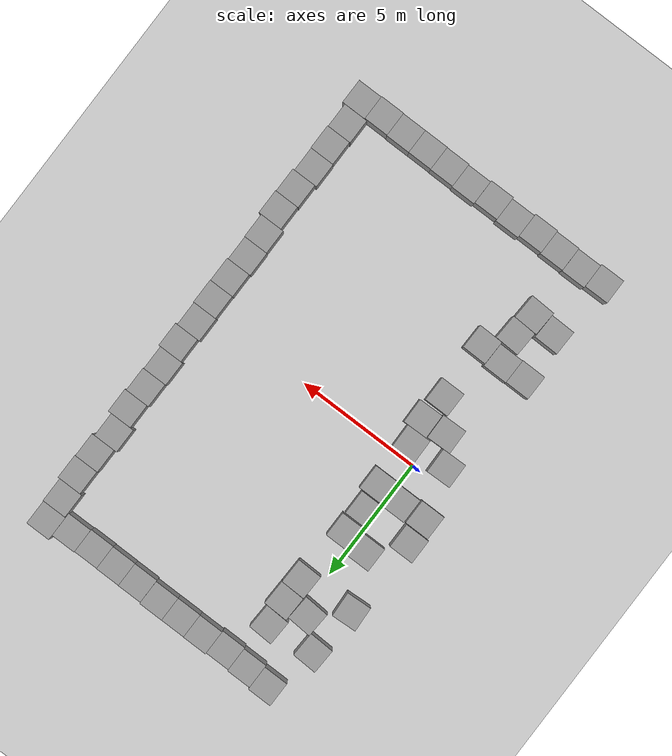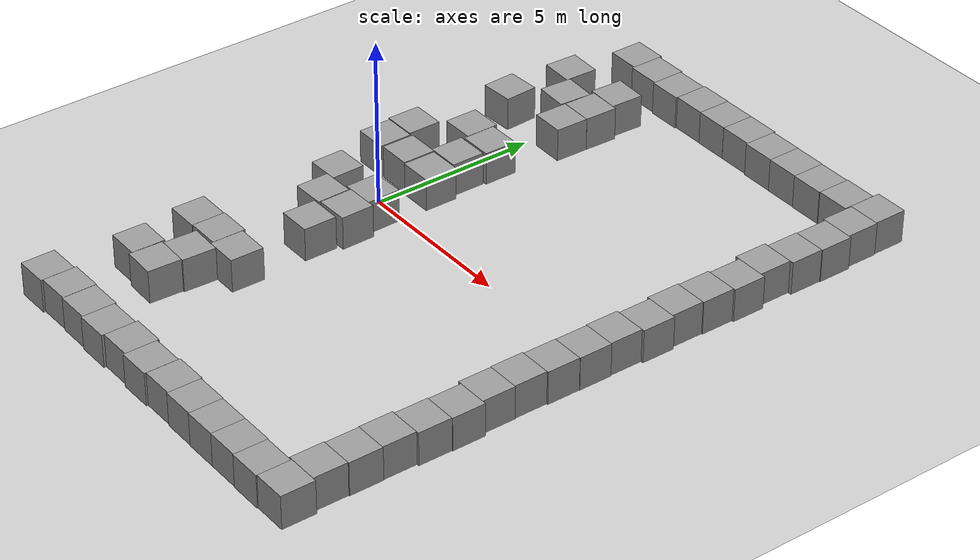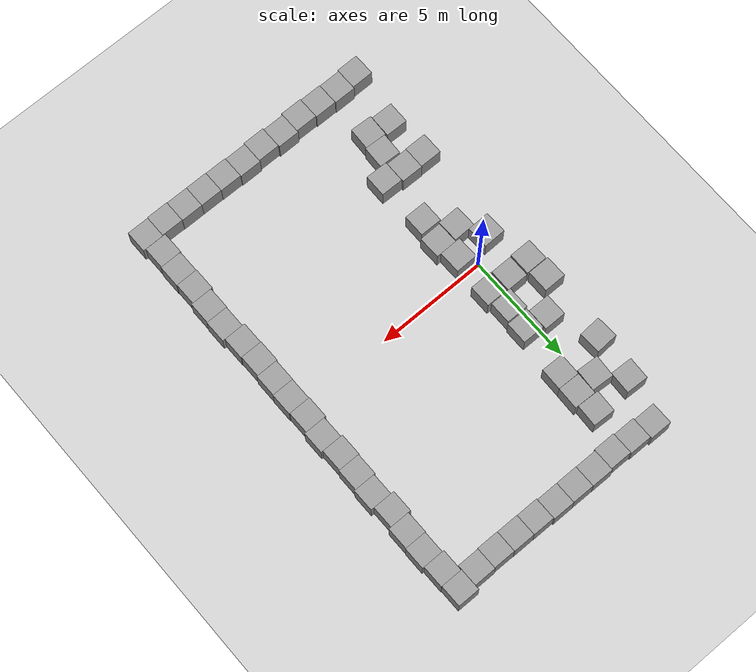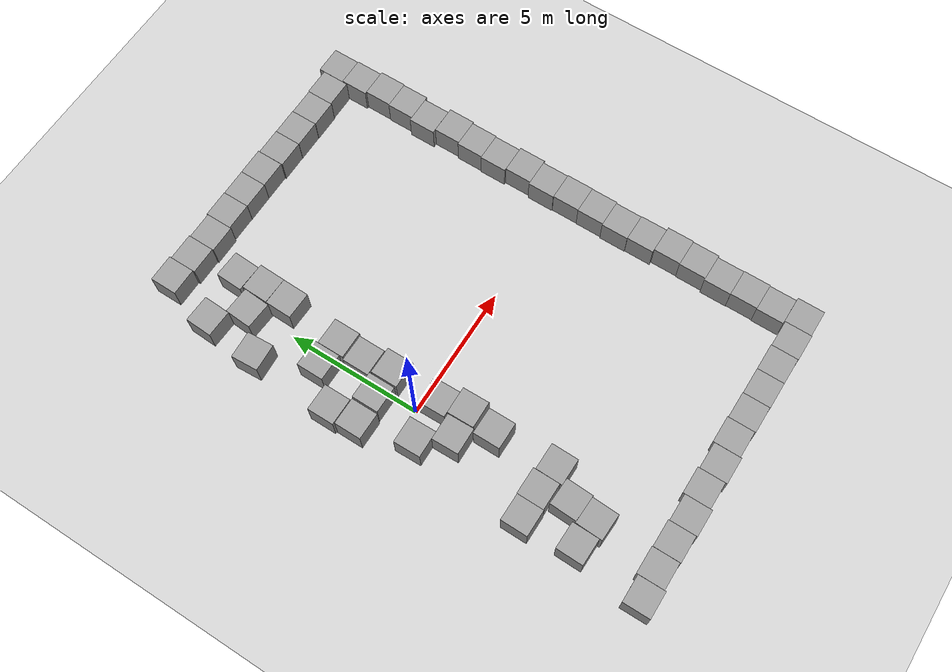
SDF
<sdf version="1.7">
 <world name="default">
  <model name="ground_plane">
   <static>1</static>
   <link name="link">
    <collision name="collision">
     <geometry><plane><normal>0 0 1</normal><size>100 100</size></plane></geometry>
     <surface>
      <contact><collide_bitmask>65535</collide_bitmask></contact>
      <friction><ode><mu>100</mu><mu2>50</mu2></ode></friction>
     </surface>
    </collision>
    <visual name="visual">
     <cast_shadows>0</cast_shadows>
     <geometry><plane><normal>0 0 1</normal><size>100 100</size></plane></geometry>
     <material>
      <script><uri>file://media/materials/scripts/gazebo.material</uri><name>Gazebo/Grey</name></script>
     </material>
    </visual>
   </link>
  </model>
  <model name="unit_box_16">
   <pose>-0.609072 9.50819 0.499995 -0 1e-05 -0.001209</pose>
   <link name="link">
    <inertial>
     <mass>1</mass>
     <inertia>
      <ixx>0.166667</ixx>
      <ixy>0</ixy>
      <ixz>0</ixz>
      <iyy>0.166667</iyy>
      <iyz>0</iyz>
      <izz>0.166667</izz>
     </inertia>
    </inertial>
    <collision name="collision"><geometry><box><size>1 1 1</size></box></geometry></collision>
    <visual name="visual">
     <geometry><box><size>1 1 1</size></box></geometry>
     <material>
      <script><name>Gazebo/Grey</name><uri>file://media/materials/scripts/gazebo.material</uri></script>
     </material>
    </visual>
   </link>
  </model>
  <model name="unit_box_17">
   <pose>0.390916 9.43627 0.499995 1e-05 0 -0.001064</pose>
   <link name="link">
    <inertial>
     <mass>1</mass>
     <inertia>
      <ixx>0.166667</ixx>
      <ixy>0</ixy>
      <ixz>0</ixz>
      <iyy>0.166667</iyy>
      <iyz>0</iyz>
      <izz>0.166667</izz>
     </inertia>
    </inertial>
    <collision name="collision"><geometry><box><size>1 1 1</size></box></geometry></collision>
    <visual name="visual">
     <geometry><box><size>1 1 1</size></box></geometry>
     <material>
      <script><name>Gazebo/Grey</name><uri>file://media/materials/scripts/gazebo.material</uri></script>
     </material>
    </visual>
   </link>
  </model>
  <model name="unit_box_18">
   <pose>1.39091 9.39225 0.499995 0 -1e-05 -0.001016</pose>
   <link name="link">
    <inertial>
     <mass>1</mass>
     <inertia>
      <ixx>0.166667</ixx>
      <ixy>0</ixy>
      <ixz>0</ixz>
      <iyy>0.166667</iyy>
      <iyz>0</iyz>
      <izz>0.166667</izz>
     </inertia>
    </inertial>
    <collision name="collision"><geometry><box><size>1 1 1</size></box></geometry></collision>
    <visual name="visual">
     <geometry><box><size>1 1 1</size></box></geometry>
     <material>
      <script><name>Gazebo/Grey</name><uri>file://media/materials/scripts/gazebo.material</uri></script>
     </material>
    </visual>
   </link>
  </model>
  <model name="unit_box_19">
   <pose>2.39096 9.4387 0.499995 0 -1e-05 -0.001018</pose>
   <link name="link">
    <inertial>
     <mass>1</mass>
     <inertia>
      <ixx>0.166667</ixx>
      <ixy>0</ixy>
      <ixz>0</ixz>
      <iyy>0.166667</iyy>
      <iyz>0</iyz>
      <izz>0.166667</izz>
     </inertia>
    </inertial>
    <collision name="collision"><geometry><box><size>1 1 1</size></box></geometry></collision>
    <visual name="visual">
     <geometry><box><size>1 1 1</size></box></geometry>
     <material>
      <script><name>Gazebo/Grey</name><uri>file://media/materials/scripts/gazebo.material</uri></script>
     </material>
    </visual>
   </link>
  </model>
  <model name="unit_box_20">
   <pose>3.39095 9.42951 0.499995 0 -1e-05 -0.001017</pose>
   <link name="link">
    <inertial>
     <mass>1</mass>
     <inertia>
      <ixx>0.166667</ixx>
      <ixy>0</ixy>
      <ixz>0</ixz>
      <iyy>0.166667</iyy>
      <iyz>0</iyz>
      <izz>0.166667</izz>
     </inertia>
    </inertial>
    <collision name="collision"><geometry><box><size>1 1 1</size></box></geometry></collision>
    <visual name="visual">
     <geometry><box><size>1 1 1</size></box></geometry>
     <material>
      <script><name>Gazebo/Grey</name><uri>file://media/materials/scripts/gazebo.material</uri></script>
     </material>
    </visual>
   </link>
  </model>
  <model name="unit_box_21">
   <pose>4.39095 9.43121 0.499995 0 -1e-05 -0.001014</pose>
   <link name="link">
    <inertial>
     <mass>1</mass>
     <inertia>
      <ixx>0.166667</ixx>
      <ixy>0</ixy>
      <ixz>0</ixz>
      <iyy>0.166667</iyy>
      <iyz>0</iyz>
      <izz>0.166667</izz>
     </inertia>
    </inertial>
    <collision name="collision"><geometry><box><size>1 1 1</size></box></geometry></collision>
    <visual name="visual">
     <geometry><box><size>1 1 1</size></box></geometry>
     <material>
      <script><name>Gazebo/Grey</name><uri>file://media/materials/scripts/gazebo.material</uri></script>
     </material>
    </visual>
   </link>
  </model>
  <model name="unit_box_22">
   <pose>5.39168 9.38598 0.5 -0 1e-06 0.000489</pose>
   <link name="link">
    <inertial>
     <mass>1</mass>
     <inertia>
      <ixx>0.166667</ixx>
      <ixy>0</ixy>
      <ixz>0</ixz>
      <iyy>0.166667</iyy>
      <iyz>0</iyz>
      <izz>0.166667</izz>
     </inertia>
    </inertial>
    <collision name="collision"><geometry><box><size>1 1 1</size></box></geometry></collision>
    <visual name="visual">
     <geometry><box><size>1 1 1</size></box></geometry>
     <material>
      <script><name>Gazebo/Grey</name><uri>file://media/materials/scripts/gazebo.material</uri></script>
     </material>
    </visual>
   </link>
  </model>
  <model name="unit_box_23">
   <pose>6.39168 9.37903 0.5 0 -1e-06 0.000489</pose>
   <link name="link">
    <inertial>
     <mass>1</mass>
     <inertia>
      <ixx>0.166667</ixx>
      <ixy>0</ixy>
      <ixz>0</ixz>
      <iyy>0.166667</iyy>
      <iyz>0</iyz>
      <izz>0.166667</izz>
     </inertia>
    </inertial>
    <collision name="collision"><geometry><box><size>1 1 1</size></box></geometry></collision>
    <visual name="visual">
     <geometry><box><size>1 1 1</size></box></geometry>
     <material>
      <script><name>Gazebo/Grey</name><uri>file://media/materials/scripts/gazebo.material</uri></script>
     </material>
    </visual>
   </link>
  </model>
  <model name="unit_box_24">
   <pose>7.39182 9.36826 0.499995 -1e-05 0 0.00073</pose>
   <link name="link">
    <inertial>
     <mass>1</mass>
     <inertia>
      <ixx>0.166667</ixx>
      <ixy>0</ixy>
      <ixz>0</ixz>
      <iyy>0.166667</iyy>
      <iyz>0</iyz>
      <izz>0.166667</izz>
     </inertia>
    </inertial>
    <collision name="collision"><geometry><box><size>1 1 1</size></box></geometry></collision>
    <visual name="visual">
     <geometry><box><size>1 1 1</size></box></geometry>
     <material>
      <script><name>Gazebo/Grey</name><uri>file://media/materials/scripts/gazebo.material</uri></script>
     </material>
    </visual>
   </link>
  </model>
  <model name="unit_box_25">
   <pose>8.39215 9.39462 0.499995 1e-05 -0 0.001466</pose>
   <link name="link">
    <inertial>
     <mass>1</mass>
     <inertia>
      <ixx>0.166667</ixx>
      <ixy>0</ixy>
      <ixz>0</ixz>
      <iyy>0.166667</iyy>
      <iyz>0</iyz>
      <izz>0.166667</izz>
     </inertia>
    </inertial>
    <collision name="collision"><geometry><box><size>1 1 1</size></box></geometry></collision>
    <visual name="visual">
     <geometry><box><size>1 1 1</size></box></geometry>
     <material>
      <script><name>Gazebo/Grey</name><uri>file://media/materials/scripts/gazebo.material</uri></script>
     </material>
    </visual>
   </link>
  </model>
  <model name="unit_box_26">
   <pose>9.39272 9.59432 0.499995 0 1e-05 0.000277</pose>
   <link name="link">
    <inertial>
     <mass>1</mass>
     <inertia>
      <ixx>0.166667</ixx>
      <ixy>0</ixy>
      <ixz>0</ixz>
      <iyy>0.166667</iyy>
      <iyz>0</iyz>
      <izz>0.166667</izz>
     </inertia>
    </inertial>
    <collision name="collision"><geometry><box><size>1 1 1</size></box></geometry></collision>
    <visual name="visual">
     <geometry><box><size>1 1 1</size></box></geometry>
     <material>
      <script><name>Gazebo/Grey</name><uri>file://media/materials/scripts/gazebo.material</uri></script>
     </material>
    </visual>
   </link>
  </model>
  <model name="unit_box_27">
   <pose>9.41845 8.59432 0.499995 0 1e-05 0.000287</pose>
   <link name="link">
    <inertial>
     <mass>1</mass>
     <inertia>
      <ixx>0.166667</ixx>
      <ixy>0</ixy>
      <ixz>0</ixz>
      <iyy>0.166667</iyy>
      <iyz>0</iyz>
      <izz>0.166667</izz>
     </inertia>
    </inertial>
    <collision name="collision"><geometry><box><size>1 1 1</size></box></geometry></collision>
    <visual name="visual">
     <geometry><box><size>1 1 1</size></box></geometry>
     <material>
      <script><name>Gazebo/Grey</name><uri>file://media/materials/scripts/gazebo.material</uri></script>
     </material>
    </visual>
   </link>
  </model>
  <model name="unit_box_28">
   <pose>9.49662 7.59431 0.499995 1e-05 -0 0.000314</pose>
   <link name="link">
    <inertial>
     <mass>1</mass>
     <inertia>
      <ixx>0.166667</ixx>
      <ixy>0</ixy>
      <ixz>0</ixz>
      <iyy>0.166667</iyy>
      <iyz>0</iyz>
      <izz>0.166667</izz>
     </inertia>
    </inertial>
    <collision name="collision"><geometry><box><size>1 1 1</size></box></geometry></collision>
    <visual name="visual">
     <geometry><box><size>1 1 1</size></box></geometry>
     <material>
      <script><name>Gazebo/Grey</name><uri>file://media/materials/scripts/gazebo.material</uri></script>
     </material>
    </visual>
   </link>
  </model>
  <model name="unit_box_29">
   <pose>9.47482 6.59424 0.499995 1e-05 0 0.000426</pose>
   <link name="link">
    <inertial>
     <mass>1</mass>
     <inertia>
      <ixx>0.166667</ixx>
      <ixy>0</ixy>
      <ixz>0</ixz>
      <iyy>0.166667</iyy>
      <iyz>0</iyz>
      <izz>0.166667</izz>
     </inertia>
    </inertial>
    <collision name="collision"><geometry><box><size>1 1 1</size></box></geometry></collision>
    <visual name="visual">
     <geometry><box><size>1 1 1</size></box></geometry>
     <material>
      <script><name>Gazebo/Grey</name><uri>file://media/materials/scripts/gazebo.material</uri></script>
     </material>
    </visual>
   </link>
  </model>
  <model name="unit_box_30">
   <pose>9.3664 5.59394 0.5 0 -0 0.000939</pose>
   <link name="link">
    <inertial>
     <mass>1</mass>
     <inertia>
      <ixx>0.166667</ixx>
      <ixy>0</ixy>
      <ixz>0</ixz>
      <iyy>0.166667</iyy>
      <iyz>0</iyz>
      <izz>0.166667</izz>
     </inertia>
    </inertial>
    <collision name="collision"><geometry><box><size>1 1 1</size></box></geometry></collision>
    <visual name="visual">
     <geometry><box><size>1 1 1</size></box></geometry>
     <material>
      <script><name>Gazebo/Grey</name><uri>file://media/materials/scripts/gazebo.material</uri></script>
     </material>
    </visual>
   </link>
  </model>
  <model name="unit_box_31">
   <pose>9.50764 4.59388 0.499995 1e-05 -0 0.001457</pose>
   <link name="link">
    <inertial>
     <mass>1</mass>
     <inertia>
      <ixx>0.166667</ixx>
      <ixy>0</ixy>
      <ixz>0</ixz>
      <iyy>0.166667</iyy>
      <iyz>0</iyz>
      <izz>0.166667</izz>
     </inertia>
    </inertial>
    <collision name="collision"><geometry><box><size>1 1 1</size></box></geometry></collision>
    <visual name="visual">
     <geometry><box><size>1 1 1</size></box></geometry>
     <material>
      <script><name>Gazebo/Grey</name><uri>file://media/materials/scripts/gazebo.material</uri></script>
     </material>
    </visual>
   </link>
  </model>
  <model name="unit_box_32">
   <pose>9.44962 3.59379 0.499995 1e-05 0 0.001464</pose>
   <link name="link">
    <inertial>
     <mass>1</mass>
     <inertia>
      <ixx>0.166667</ixx>
      <ixy>0</ixy>
      <ixz>0</ixz>
      <iyy>0.166667</iyy>
      <iyz>0</iyz>
      <izz>0.166667</izz>
     </inertia>
    </inertial>
    <collision name="collision"><geometry><box><size>1 1 1</size></box></geometry></collision>
    <visual name="visual">
     <geometry><box><size>1 1 1</size></box></geometry>
     <material>
      <script><name>Gazebo/Grey</name><uri>file://media/materials/scripts/gazebo.material</uri></script>
     </material>
    </visual>
   </link>
  </model>
  <model name="unit_box_33">
   <pose>9.41917 2.59372 0.499995 1e-05 -0 0.001487</pose>
   <link name="link">
    <inertial>
     <mass>1</mass>
     <inertia>
      <ixx>0.166667</ixx>
      <ixy>0</ixy>
      <ixz>0</ixz>
      <iyy>0.166667</iyy>
      <iyz>0</iyz>
      <izz>0.166667</izz>
     </inertia>
    </inertial>
    <collision name="collision"><geometry><box><size>1 1 1</size></box></geometry></collision>
    <visual name="visual">
     <geometry><box><size>1 1 1</size></box></geometry>
     <material>
      <script><name>Gazebo/Grey</name><uri>file://media/materials/scripts/gazebo.material</uri></script>
     </material>
    </visual>
   </link>
  </model>
  <model name="unit_box_34">
   <pose>9.50067 1.59382 0.499995 -1e-05 -0 0.001551</pose>
   <link name="link">
    <inertial>
     <mass>1</mass>
     <inertia>
      <ixx>0.166667</ixx>
      <ixy>0</ixy>
      <ixz>0</ixz>
      <iyy>0.166667</iyy>
      <iyz>0</iyz>
      <izz>0.166667</izz>
     </inertia>
    </inertial>
    <collision name="collision"><geometry><box><size>1 1 1</size></box></geometry></collision>
    <visual name="visual">
     <geometry><box><size>1 1 1</size></box></geometry>
     <material>
      <script><name>Gazebo/Grey</name><uri>file://media/materials/scripts/gazebo.material</uri></script>
     </material>
    </visual>
   </link>
  </model>
  <model name="unit_box_35">
   <pose>9.42389 0.593646 0.499995 1e-05 -0 0.001635</pose>
   <link name="link">
    <inertial>
     <mass>1</mass>
     <inertia>
      <ixx>0.166667</ixx>
      <ixy>0</ixy>
      <ixz>0</ixz>
      <iyy>0.166667</iyy>
      <iyz>0</iyz>
      <izz>0.166667</izz>
     </inertia>
    </inertial>
    <collision name="collision"><geometry><box><size>1 1 1</size></box></geometry></collision>
    <visual name="visual">
     <geometry><box><size>1 1 1</size></box></geometry>
     <material>
      <script><name>Gazebo/Grey</name><uri>file://media/materials/scripts/gazebo.material</uri></script>
     </material>
    </visual>
   </link>
  </model>
  <model name="unit_box_36">
   <pose>9.45115 -0.406326 0.499995 0 -1e-05 0.001611</pose>
   <link name="link">
    <inertial>
     <mass>1</mass>
     <inertia>
      <ixx>0.166667</ixx>
      <ixy>0</ixy>
      <ixz>0</ixz>
      <iyy>0.166667</iyy>
      <iyz>0</iyz>
      <izz>0.166667</izz>
     </inertia>
    </inertial>
    <collision name="collision"><geometry><box><size>1 1 1</size></box></geometry></collision>
    <visual name="visual">
     <geometry><box><size>1 1 1</size></box></geometry>
     <material>
      <script><name>Gazebo/Grey</name><uri>file://media/materials/scripts/gazebo.material</uri></script>
     </material>
    </visual>
   </link>
  </model>
  <model name="unit_box_37">
   <pose>9.43994 -1.40635 0.499995 -0 -1e-05 0.00161</pose>
   <link name="link">
    <inertial>
     <mass>1</mass>
     <inertia>
      <ixx>0.166667</ixx>
      <ixy>0</ixy>
      <ixz>0</ixz>
      <iyy>0.166667</iyy>
      <iyz>0</iyz>
      <izz>0.166667</izz>
     </inertia>
    </inertial>
    <collision name="collision"><geometry><box><size>1 1 1</size></box></geometry></collision>
    <visual name="visual">
     <geometry><box><size>1 1 1</size></box></geometry>
     <material>
      <script><name>Gazebo/Grey</name><uri>file://media/materials/scripts/gazebo.material</uri></script>
     </material>
    </visual>
   </link>
  </model>
  <model name="unit_box_38">
   <pose>9.40093 -2.40644 0.499995 0 -1e-05 0.001587</pose>
   <link name="link">
    <inertial>
     <mass>1</mass>
     <inertia>
      <ixx>0.166667</ixx>
      <ixy>0</ixy>
      <ixz>0</ixz>
      <iyy>0.166667</iyy>
      <iyz>0</iyz>
      <izz>0.166667</izz>
     </inertia>
    </inertial>
    <collision name="collision"><geometry><box><size>1 1 1</size></box></geometry></collision>
    <visual name="visual">
     <geometry><box><size>1 1 1</size></box></geometry>
     <material>
      <script><name>Gazebo/Grey</name><uri>file://media/materials/scripts/gazebo.material</uri></script>
     </material>
    </visual>
   </link>
  </model>
  <model name="unit_box_39">
   <pose>9.42291 -3.40644 0.499995 1e-05 -0 0.001552</pose>
   <link name="link">
    <inertial>
     <mass>1</mass>
     <inertia>
      <ixx>0.166667</ixx>
      <ixy>0</ixy>
      <ixz>0</ixz>
      <iyy>0.166667</iyy>
      <iyz>0</iyz>
      <izz>0.166667</izz>
     </inertia>
    </inertial>
    <collision name="collision"><geometry><box><size>1 1 1</size></box></geometry></collision>
    <visual name="visual">
     <geometry><box><size>1 1 1</size></box></geometry>
     <material>
      <script><name>Gazebo/Grey</name><uri>file://media/materials/scripts/gazebo.material</uri></script>
     </material>
    </visual>
   </link>
  </model>
  <model name="unit_box_40">
   <pose>9.53442 -4.40627 0.499995 1e-05 -0 0.001546</pose>
   <link name="link">
    <inertial>
     <mass>1</mass>
     <inertia>
      <ixx>0.166667</ixx>
      <ixy>0</ixy>
      <ixz>0</ixz>
      <iyy>0.166667</iyy>
      <iyz>0</iyz>
      <izz>0.166667</izz>
     </inertia>
    </inertial>
    <collision name="collision"><geometry><box><size>1 1 1</size></box></geometry></collision>
    <visual name="visual">
     <geometry><box><size>1 1 1</size></box></geometry>
     <material>
      <script><name>Gazebo/Grey</name><uri>file://media/materials/scripts/gazebo.material</uri></script>
     </material>
    </visual>
   </link>
  </model>
  <model name="unit_box_41">
   <pose>9.51363 -5.4063 0.499995 -1e-05 -0 0.001535</pose>
   <link name="link">
    <inertial>
     <mass>1</mass>
     <inertia>
      <ixx>0.166667</ixx>
      <ixy>0</ixy>
      <ixz>0</ixz>
      <iyy>0.166667</iyy>
      <iyz>0</iyz>
      <izz>0.166667</izz>
     </inertia>
    </inertial>
    <collision name="collision"><geometry><box><size>1 1 1</size></box></geometry></collision>
    <visual name="visual">
     <geometry><box><size>1 1 1</size></box></geometry>
     <material>
      <script><name>Gazebo/Grey</name><uri>file://media/materials/scripts/gazebo.material</uri></script>
     </material>
    </visual>
   </link>
  </model>
  <model name="unit_box_42">
   <pose>9.4441 -6.40642 0.499995 -1e-05 -0 0.001532</pose>
   <link name="link">
    <inertial>
     <mass>1</mass>
     <inertia>
      <ixx>0.166667</ixx>
      <ixy>0</ixy>
      <ixz>0</ixz>
      <iyy>0.166667</iyy>
      <iyz>0</iyz>
      <izz>0.166667</izz>
     </inertia>
    </inertial>
    <collision name="collision"><geometry><box><size>1 1 1</size></box></geometry></collision>
    <visual name="visual">
     <geometry><box><size>1 1 1</size></box></geometry>
     <material>
      <script><name>Gazebo/Grey</name><uri>file://media/materials/scripts/gazebo.material</uri></script>
     </material>
    </visual>
   </link>
  </model>
  <model name="unit_box_43">
   <pose>9.46387 -7.40639 0.499995 -1e-05 -0 0.001532</pose>
   <link name="link">
    <inertial>
     <mass>1</mass>
     <inertia>
      <ixx>0.166667</ixx>
      <ixy>0</ixy>
      <ixz>0</ixz>
      <iyy>0.166667</iyy>
      <iyz>0</iyz>
      <izz>0.166667</izz>
     </inertia>
    </inertial>
    <collision name="collision"><geometry><box><size>1 1 1</size></box></geometry></collision>
    <visual name="visual">
     <geometry><box><size>1 1 1</size></box></geometry>
     <material>
      <script><name>Gazebo/Grey</name><uri>file://media/materials/scripts/gazebo.material</uri></script>
     </material>
    </visual>
   </link>
  </model>
  <model name="unit_box_44">
   <pose>9.43884 -8.40646 0.499995 -0 1e-05 0.001493</pose>
   <link name="link">
    <inertial>
     <mass>1</mass>
     <inertia>
      <ixx>0.166667</ixx>
      <ixy>0</ixy>
      <ixz>0</ixz>
      <iyy>0.166667</iyy>
      <iyz>0</iyz>
      <izz>0.166667</izz>
     </inertia>
    </inertial>
    <collision name="collision"><geometry><box><size>1 1 1</size></box></geometry></collision>
    <visual name="visual">
     <geometry><box><size>1 1 1</size></box></geometry>
     <material>
      <script><name>Gazebo/Grey</name><uri>file://media/materials/scripts/gazebo.material</uri></script>
     </material>
    </visual>
   </link>
  </model>
  <model name="unit_box_45">
   <pose>9.54897 -9.40792 0.5 0 0 -0.00098</pose>
   <link name="link">
    <inertial>
     <mass>1</mass>
     <inertia>
      <ixx>0.166667</ixx>
      <ixy>0</ixy>
      <ixz>0</ixz>
      <iyy>0.166667</iyy>
      <iyz>0</iyz>
      <izz>0.166667</izz>
     </inertia>
    </inertial>
    <collision name="collision"><geometry><box><size>1 1 1</size></box></geometry></collision>
    <visual name="visual">
     <geometry><box><size>1 1 1</size></box></geometry>
     <material>
      <script><name>Gazebo/Grey</name><uri>file://media/materials/scripts/gazebo.material</uri></script>
     </material>
    </visual>
   </link>
  </model>
  <model name="unit_box_46">
   <pose>8.54892 -9.43223 0.5 -0 -0 -0.000931</pose>
   <link name="link">
    <inertial>
     <mass>1</mass>
     <inertia>
      <ixx>0.166667</ixx>
      <ixy>0</ixy>
      <ixz>0</ixz>
      <iyy>0.166667</iyy>
      <iyz>0</iyz>
      <izz>0.166667</izz>
     </inertia>
    </inertial>
    <collision name="collision"><geometry><box><size>1 1 1</size></box></geometry></collision>
    <visual name="visual">
     <geometry><box><size>1 1 1</size></box></geometry>
     <material>
      <script><name>Gazebo/Grey</name><uri>file://media/materials/scripts/gazebo.material</uri></script>
     </material>
    </visual>
   </link>
  </model>
  <model name="unit_box_47">
   <pose>7.54892 -9.41409 0.499995 -1e-05 -0 -0.000922</pose>
   <link name="link">
    <inertial>
     <mass>1</mass>
     <inertia>
      <ixx>0.166667</ixx>
      <ixy>0</ixy>
      <ixz>0</ixz>
      <iyy>0.166667</iyy>
      <iyz>0</iyz>
      <izz>0.166667</izz>
     </inertia>
    </inertial>
    <collision name="collision"><geometry><box><size>1 1 1</size></box></geometry></collision>
    <visual name="visual">
     <geometry><box><size>1 1 1</size></box></geometry>
     <material>
      <script><name>Gazebo/Grey</name><uri>file://media/materials/scripts/gazebo.material</uri></script>
     </material>
    </visual>
   </link>
  </model>
  <model name="unit_box_48">
   <pose>6.5489 -9.41345 0.499995 0 -1e-05 -0.000895</pose>
   <link name="link">
    <inertial>
     <mass>1</mass>
     <inertia>
      <ixx>0.166667</ixx>
      <ixy>0</ixy>
      <ixz>0</ixz>
      <iyy>0.166667</iyy>
      <iyz>0</iyz>
      <izz>0.166667</izz>
     </inertia>
    </inertial>
    <collision name="collision"><geometry><box><size>1 1 1</size></box></geometry></collision>
    <visual name="visual">
     <geometry><box><size>1 1 1</size></box></geometry>
     <material>
      <script><name>Gazebo/Grey</name><uri>file://media/materials/scripts/gazebo.material</uri></script>
     </material>
    </visual>
   </link>
  </model>
  <model name="unit_box_49">
   <pose>5.54886 -9.40002 0.499995 0 9e-06 -0.000794</pose>
   <link name="link">
    <inertial>
     <mass>1</mass>
     <inertia>
      <ixx>0.166667</ixx>
      <ixy>0</ixy>
      <ixz>0</ixz>
      <iyy>0.166667</iyy>
      <iyz>0</iyz>
      <izz>0.166667</izz>
     </inertia>
    </inertial>
    <collision name="collision"><geometry><box><size>1 1 1</size></box></geometry></collision>
    <visual name="visual">
     <geometry><box><size>1 1 1</size></box></geometry>
     <material>
      <script><name>Gazebo/Grey</name><uri>file://media/materials/scripts/gazebo.material</uri></script>
     </material>
    </visual>
   </link>
  </model>
  <model name="unit_box_50">
   <pose>4.54888 -9.36813 0.499995 0 -1e-05 -0.00079</pose>
   <link name="link">
    <inertial>
     <mass>1</mass>
     <inertia>
      <ixx>0.166667</ixx>
      <ixy>0</ixy>
      <ixz>0</ixz>
      <iyy>0.166667</iyy>
      <iyz>0</iyz>
      <izz>0.166667</izz>
     </inertia>
    </inertial>
    <collision name="collision"><geometry><box><size>1 1 1</size></box></geometry></collision>
    <visual name="visual">
     <geometry><box><size>1 1 1</size></box></geometry>
     <material>
      <script><name>Gazebo/Grey</name><uri>file://media/materials/scripts/gazebo.material</uri></script>
     </material>
    </visual>
   </link>
  </model>
  <model name="unit_box_51">
   <pose>3.54793 -9.42122 0.499995 0 -1e-05 0.00123</pose>
   <link name="link">
    <inertial>
     <mass>1</mass>
     <inertia>
      <ixx>0.166667</ixx>
      <ixy>0</ixy>
      <ixz>0</ixz>
      <iyy>0.166667</iyy>
      <iyz>0</iyz>
      <izz>0.166667</izz>
     </inertia>
    </inertial>
    <collision name="collision"><geometry><box><size>1 1 1</size></box></geometry></collision>
    <visual name="visual">
     <geometry><box><size>1 1 1</size></box></geometry>
     <material>
      <script><name>Gazebo/Grey</name><uri>file://media/materials/scripts/gazebo.material</uri></script>
     </material>
    </visual>
   </link>
  </model>
  <model name="unit_box_52">
   <pose>2.54786 -9.36172 0.499995 0 1e-05 0.001237</pose>
   <link name="link">
    <inertial>
     <mass>1</mass>
     <inertia>
      <ixx>0.166667</ixx>
      <ixy>0</ixy>
      <ixz>0</ixz>
      <iyy>0.166667</iyy>
      <iyz>0</iyz>
      <izz>0.166667</izz>
     </inertia>
    </inertial>
    <collision name="collision"><geometry><box><size>1 1 1</size></box></geometry></collision>
    <visual name="visual">
     <geometry><box><size>1 1 1</size></box></geometry>
     <material>
      <script><name>Gazebo/Grey</name><uri>file://media/materials/scripts/gazebo.material</uri></script>
     </material>
    </visual>
   </link>
  </model>
  <model name="unit_box_53">
   <pose>1.54794 -9.43498 0.499995 1e-05 -0 0.001245</pose>
   <link name="link">
    <inertial>
     <mass>1</mass>
     <inertia>
      <ixx>0.166667</ixx>
      <ixy>0</ixy>
      <ixz>0</ixz>
      <iyy>0.166667</iyy>
      <iyz>0</iyz>
      <izz>0.166667</izz>
     </inertia>
    </inertial>
    <collision name="collision"><geometry><box><size>1 1 1</size></box></geometry></collision>
    <visual name="visual">
     <geometry><box><size>1 1 1</size></box></geometry>
     <material>
      <script><name>Gazebo/Grey</name><uri>file://media/materials/scripts/gazebo.material</uri></script>
     </material>
    </visual>
   </link>
  </model>
  <model name="unit_box_54">
   <pose>0.547855 -9.39645 0.5 0 -0 0.001308</pose>
   <link name="link">
    <inertial>
     <mass>1</mass>
     <inertia>
      <ixx>0.166667</ixx>
      <ixy>0</ixy>
      <ixz>0</ixz>
      <iyy>0.166667</iyy>
      <iyz>0</iyz>
      <izz>0.166667</izz>
     </inertia>
    </inertial>
    <collision name="collision"><geometry><box><size>1 1 1</size></box></geometry></collision>
    <visual name="visual">
     <geometry><box><size>1 1 1</size></box></geometry>
     <material>
      <script><name>Gazebo/Grey</name><uri>file://media/materials/scripts/gazebo.material</uri></script>
     </material>
    </visual>
   </link>
  </model>
  <model name="unit_box_55">
   <pose>-0.453692 -9.37406 0.5 0 -0 0.004334</pose>
   <link name="link">
    <inertial>
     <mass>1</mass>
     <inertia>
      <ixx>0.166667</ixx>
      <ixy>0</ixy>
      <ixz>0</ixz>
      <iyy>0.166667</iyy>
      <iyz>0</iyz>
      <izz>0.166667</izz>
     </inertia>
    </inertial>
    <collision name="collision"><geometry><box><size>1 1 1</size></box></geometry></collision>
    <visual name="visual">
     <geometry><box><size>1 1 1</size></box></geometry>
     <material>
      <script><name>Gazebo/Grey</name><uri>file://media/materials/scripts/gazebo.material</uri></script>
     </material>
    </visual>
   </link>
  </model>
  <model name="unit_box_56">
   <pose>-1.4542 -9.43959 0.5 0 -0 0.006105</pose>
   <link name="link">
    <inertial>
     <mass>1</mass>
     <inertia>
      <ixx>0.166667</ixx>
      <ixy>0</ixy>
      <ixz>0</ixz>
      <iyy>0.166667</iyy>
      <iyz>0</iyz>
      <izz>0.166667</izz>
     </inertia>
    </inertial>
    <collision name="collision"><geometry><box><size>1 1 1</size></box></geometry></collision>
    <visual name="visual">
     <geometry><box><size>1 1 1</size></box></geometry>
     <material>
      <script><name>Gazebo/Grey</name><uri>file://media/materials/scripts/gazebo.material</uri></script>
     </material>
    </visual>
   </link>
  </model>
  <model name="unit_box_100">
   <pose>-1.13591 -6.88033 0.499995 -1e-05 -0 -0.01841</pose>
   <link name="link">
    <inertial>
     <mass>1</mass>
     <inertia>
      <ixx>0.166667</ixx>
      <ixy>0</ixy>
      <ixz>0</ixz>
      <iyy>0.166667</iyy>
      <iyz>0</iyz>
      <izz>0.166667</izz>
     </inertia>
    </inertial>
    <collision name="collision"><geometry><box><size>1 1 1</size></box></geometry></collision>
    <visual name="visual">
     <geometry><box><size>1 1 1</size></box></geometry>
     <material>
      <script><name>Gazebo/Grey</name><uri>file://media/materials/scripts/gazebo.material</uri></script>
     </material>
    </visual>
   </link>
  </model>
  <model name="unit_box_101">
   <pose>-0.128341 -7.00295 0.499995 0 -1e-05 -0.042313</pose>
   <link name="link">
    <inertial>
     <mass>1</mass>
     <inertia>
      <ixx>0.166667</ixx>
      <ixy>0</ixy>
      <ixz>0</ixz>
      <iyy>0.166667</iyy>
      <iyz>0</iyz>
      <izz>0.166667</izz>
     </inertia>
    </inertial>
    <collision name="collision"><geometry><box><size>1 1 1</size></box></geometry></collision>
    <visual name="visual">
     <geometry><box><size>1 1 1</size></box></geometry>
     <material>
      <script><name>Gazebo/Grey</name><uri>file://media/materials/scripts/gazebo.material</uri></script>
     </material>
    </visual>
   </link>
  </model>
  <model name="unit_box_102">
   <pose>-0.035819 -6.00521 0.499995 -1e-05 -0 -0.043639</pose>
   <link name="link">
    <inertial>
     <mass>1</mass>
     <inertia>
      <ixx>0.166667</ixx>
      <ixy>0</ixy>
      <ixz>0</ixz>
      <iyy>0.166667</iyy>
      <iyz>0</iyz>
      <izz>0.166667</izz>
     </inertia>
    </inertial>
    <collision name="collision"><geometry><box><size>1 1 1</size></box></geometry></collision>
    <visual name="visual">
     <geometry><box><size>1 1 1</size></box></geometry>
     <material>
      <script><name>Gazebo/Grey</name><uri>file://media/materials/scripts/gazebo.material</uri></script>
     </material>
    </visual>
   </link>
  </model>
  <model name="unit_box_103">
   <pose>-1.29114 -4.94657 0.499995 1e-05 -0 -0.007158</pose>
   <link name="link">
    <inertial>
     <mass>1</mass>
     <inertia>
      <ixx>0.166667</ixx>
      <ixy>0</ixy>
      <ixz>0</ixz>
      <iyy>0.166667</iyy>
      <iyz>0</iyz>
      <izz>0.166667</izz>
     </inertia>
    </inertial>
    <collision name="collision"><geometry><box><size>1 1 1</size></box></geometry></collision>
    <visual name="visual">
     <geometry><box><size>1 1 1</size></box></geometry>
     <material>
      <script><name>Gazebo/Grey</name><uri>file://media/materials/scripts/gazebo.material</uri></script>
     </material>
    </visual>
   </link>
  </model>
  <model name="unit_box_104">
   <pose>-0.290837 -4.93388 0.499995 1e-05 -0 -0.007326</pose>
   <link name="link">
    <inertial>
     <mass>1</mass>
     <inertia>
      <ixx>0.166667</ixx>
      <ixy>0</ixy>
      <ixz>0</ixz>
      <iyy>0.166667</iyy>
      <iyz>0</iyz>
      <izz>0.166667</izz>
     </inertia>
    </inertial>
    <collision name="collision"><geometry><box><size>1 1 1</size></box></geometry></collision>
    <visual name="visual">
     <geometry><box><size>1 1 1</size></box></geometry>
     <material>
      <script><name>Gazebo/Grey</name><uri>file://media/materials/scripts/gazebo.material</uri></script>
     </material>
    </visual>
   </link>
  </model>
  <model name="unit_box_105">
   <pose>0.711161 -5.0216 0.499995 -0 1e-05 -0.013186</pose>
   <link name="link">
    <inertial>
     <mass>1</mass>
     <inertia>
      <ixx>0.166667</ixx>
      <ixy>0</ixy>
      <ixz>0</ixz>
      <iyy>0.166667</iyy>
      <iyz>0</iyz>
      <izz>0.166667</izz>
     </inertia>
    </inertial>
    <collision name="collision"><geometry><box><size>1 1 1</size></box></geometry></collision>
    <visual name="visual">
     <geometry><box><size>1 1 1</size></box></geometry>
     <material>
      <script><name>Gazebo/Grey</name><uri>file://media/materials/scripts/gazebo.material</uri></script>
     </material>
    </visual>
   </link>
  </model>
  <model name="unit_box_108">
   <pose>-0.96481 -0.670954 0.499995 0 1e-05 0.020978</pose>
   <link name="link">
    <inertial>
     <mass>1</mass>
     <inertia>
      <ixx>0.166667</ixx>
      <ixy>0</ixy>
      <ixz>0</ixz>
      <iyy>0.166667</iyy>
      <iyz>0</iyz>
      <izz>0.166667</izz>
     </inertia>
    </inertial>
    <collision name="collision"><geometry><box><size>1 1 1</size></box></geometry></collision>
    <visual name="visual">
     <geometry><box><size>1 1 1</size></box></geometry>
     <material>
      <script><name>Gazebo/Grey</name><uri>file://media/materials/scripts/gazebo.material</uri></script>
     </material>
    </visual>
   </link>
  </model>
  <model name="unit_box_109">
   <pose>-0.224606 -1.65585 0.499995 -1e-05 0 0.020969</pose>
   <link name="link">
    <inertial>
     <mass>1</mass>
     <inertia>
      <ixx>0.166667</ixx>
      <ixy>0</ixy>
      <ixz>0</ixz>
      <iyy>0.166667</iyy>
      <iyz>0</iyz>
      <izz>0.166667</izz>
     </inertia>
    </inertial>
    <collision name="collision"><geometry><box><size>1 1 1</size></box></geometry></collision>
    <visual name="visual">
     <geometry><box><size>1 1 1</size></box></geometry>
     <material>
      <script><name>Gazebo/Grey</name><uri>file://media/materials/scripts/gazebo.material</uri></script>
     </material>
    </visual>
   </link>
  </model>
  <model name="unit_box_110">
   <pose>0.650055 -2.68895 0.499995 0 1e-05 0</pose>
   <link name="link">
    <inertial>
     <mass>1</mass>
     <inertia>
      <ixx>0.166667</ixx>
      <ixy>0</ixy>
      <ixz>0</ixz>
      <iyy>0.166667</iyy>
      <iyz>0</iyz>
      <izz>0.166667</izz>
     </inertia>
    </inertial>
    <collision name="collision"><geometry><box><size>1 1 1</size></box></geometry></collision>
    <visual name="visual">
     <geometry><box><size>1 1 1</size></box></geometry>
     <material>
      <script><name>Gazebo/Grey</name><uri>file://media/materials/scripts/gazebo.material</uri></script>
     </material>
    </visual>
   </link>
  </model>
  <model name="unit_box_111">
   <pose>0.794098 -1.59033 0.499995 -1e-05 0 0.0171</pose>
   <link name="link">
    <inertial>
     <mass>1</mass>
     <inertia>
      <ixx>0.166667</ixx>
      <ixy>0</ixy>
      <ixz>0</ixz>
      <iyy>0.166667</iyy>
      <iyz>0</iyz>
      <izz>0.166667</izz>
     </inertia>
    </inertial>
    <collision name="collision"><geometry><box><size>1 1 1</size></box></geometry></collision>
    <visual name="visual">
     <geometry><box><size>1 1 1</size></box></geometry>
     <material>
      <script><name>Gazebo/Grey</name><uri>file://media/materials/scripts/gazebo.material</uri></script>
     </material>
    </visual>
   </link>
  </model>
  <model name="unit_box_112">
   <pose>0.588379 -0.5937 0.499995 -1e-05 0 0.017096</pose>
   <link name="link">
    <inertial>
     <mass>1</mass>
     <inertia>
      <ixx>0.166667</ixx>
      <ixy>0</ixy>
      <ixz>0</ixz>
      <iyy>0.166667</iyy>
      <iyz>0</iyz>
      <izz>0.166667</izz>
     </inertia>
    </inertial>
    <collision name="collision"><geometry><box><size>1 1 1</size></box></geometry></collision>
    <visual name="visual">
     <geometry><box><size>1 1 1</size></box></geometry>
     <material>
      <script><name>Gazebo/Grey</name><uri>file://media/materials/scripts/gazebo.material</uri></script>
     </material>
    </visual>
   </link>
  </model>
  <model name="unit_box_113">
   <pose>-1.47886 1.28069 0.499995 -1e-05 -0 -0</pose>
   <link name="link">
    <inertial>
     <mass>1</mass>
     <inertia>
      <ixx>0.166667</ixx>
      <ixy>0</ixy>
      <ixz>0</ixz>
      <iyy>0.166667</iyy>
      <iyz>0</iyz>
      <izz>0.166667</izz>
     </inertia>
    </inertial>
    <collision name="collision"><geometry><box><size>1 1 1</size></box></geometry></collision>
    <visual name="visual">
     <geometry><box><size>1 1 1</size></box></geometry>
     <material>
      <script><name>Gazebo/Grey</name><uri>file://media/materials/scripts/gazebo.material</uri></script>
     </material>
    </visual>
   </link>
  </model>
  <model name="unit_box_114">
   <pose>-0.429163 1.32025 0.499995 0 -1e-05 -0.001205</pose>
   <link name="link">
    <inertial>
     <mass>1</mass>
     <inertia>
      <ixx>0.166667</ixx>
      <ixy>0</ixy>
      <ixz>0</ixz>
      <iyy>0.166667</iyy>
      <iyz>0</iyz>
      <izz>0.166667</izz>
     </inertia>
    </inertial>
    <collision name="collision"><geometry><box><size>1 1 1</size></box></geometry></collision>
    <visual name="visual">
     <geometry><box><size>1 1 1</size></box></geometry>
     <material>
      <script><name>Gazebo/Grey</name><uri>file://media/materials/scripts/gazebo.material</uri></script>
     </material>
    </visual>
   </link>
  </model>
  <model name="unit_box_115">
   <pose>0.61552 1.28445 0.499995 -1e-05 -0 -0</pose>
   <link name="link">
    <inertial>
     <mass>1</mass>
     <inertia>
      <ixx>0.166667</ixx>
      <ixy>0</ixy>
      <ixz>0</ixz>
      <iyy>0.166667</iyy>
      <iyz>0</iyz>
      <izz>0.166667</izz>
     </inertia>
    </inertial>
    <collision name="collision"><geometry><box><size>1 1 1</size></box></geometry></collision>
    <visual name="visual">
     <geometry><box><size>1 1 1</size></box></geometry>
     <material>
      <script><name>Gazebo/Grey</name><uri>file://media/materials/scripts/gazebo.material</uri></script>
     </material>
    </visual>
   </link>
  </model>
  <model name="unit_box_116">
   <pose>-1.55077 2.30519 0.499995 0 -1e-05 0.000756</pose>
   <link name="link">
    <inertial>
     <mass>1</mass>
     <inertia>
      <ixx>0.166667</ixx>
      <ixy>0</ixy>
      <ixz>0</ixz>
      <iyy>0.166667</iyy>
      <iyz>0</iyz>
      <izz>0.166667</izz>
     </inertia>
    </inertial>
    <collision name="collision"><geometry><box><size>1 1 1</size></box></geometry></collision>
    <visual name="visual">
     <geometry><box><size>1 1 1</size></box></geometry>
     <material>
      <script><name>Gazebo/Grey</name><uri>file://media/materials/scripts/gazebo.material</uri></script>
     </material>
    </visual>
   </link>
  </model>
  <model name="unit_box_117">
   <pose>0.465424 2.31916 0.499995 1e-05 -0 -0.001284</pose>
   <link name="link">
    <inertial>
     <mass>1</mass>
     <inertia>
      <ixx>0.166667</ixx>
      <ixy>0</ixy>
      <ixz>0</ixz>
      <iyy>0.166667</iyy>
      <iyz>0</iyz>
      <izz>0.166667</izz>
     </inertia>
    </inertial>
    <collision name="collision"><geometry><box><size>1 1 1</size></box></geometry></collision>
    <visual name="visual">
     <geometry><box><size>1 1 1</size></box></geometry>
     <material>
      <script><name>Gazebo/Grey</name><uri>file://media/materials/scripts/gazebo.material</uri></script>
     </material>
    </visual>
   </link>
  </model>
  <model name="unit_box_119">
   <pose>-0.472788 3.50121 0.499995 -1e-05 -0 -0</pose>
   <link name="link">
    <inertial>
     <mass>1</mass>
     <inertia>
      <ixx>0.166667</ixx>
      <ixy>0</ixy>
      <ixz>0</ixz>
      <iyy>0.166667</iyy>
      <iyz>0</iyz>
      <izz>0.166667</izz>
     </inertia>
    </inertial>
    <collision name="collision"><geometry><box><size>1 1 1</size></box></geometry></collision>
    <visual name="visual">
     <geometry><box><size>1 1 1</size></box></geometry>
     <material>
      <script><name>Gazebo/Grey</name><uri>file://media/materials/scripts/gazebo.material</uri></script>
     </material>
    </visual>
   </link>
  </model>
  <model name="unit_box_120">
   <pose>0.534589 3.37085 0.499995 0 1e-05 0</pose>
   <link name="link">
    <inertial>
     <mass>1</mass>
     <inertia>
      <ixx>0.166667</ixx>
      <ixy>0</ixy>
      <ixz>0</ixz>
      <iyy>0.166667</iyy>
      <iyz>0</iyz>
      <izz>0.166667</izz>
     </inertia>
    </inertial>
    <collision name="collision"><geometry><box><size>1 1 1</size></box></geometry></collision>
    <visual name="visual">
     <geometry><box><size>1 1 1</size></box></geometry>
     <material>
      <script><name>Gazebo/Grey</name><uri>file://media/materials/scripts/gazebo.material</uri></script>
     </material>
    </visual>
   </link>
  </model>
  <model name="unit_box_121">
   <pose>-1.38618 5.52947 0.5 0 -0 0.054029</pose>
   <link name="link">
    <inertial>
     <mass>1</mass>
     <inertia>
      <ixx>0.166667</ixx>
      <ixy>0</ixy>
      <ixz>0</ixz>
      <iyy>0.166667</iyy>
      <iyz>0</iyz>
      <izz>0.166667</izz>
     </inertia>
    </inertial>
    <collision name="collision"><geometry><box><size>1 1 1</size></box></geometry></collision>
    <visual name="visual">
     <geometry><box><size>1 1 1</size></box></geometry>
     <material>
      <script><name>Gazebo/Grey</name><uri>file://media/materials/scripts/gazebo.material</uri></script>
     </material>
    </visual>
   </link>
  </model>
  <model name="unit_box_123">
   <pose>-1.1789 7.55224 0.5 0 0 -0.041035</pose>
   <link name="link">
    <inertial>
     <mass>1</mass>
     <inertia>
      <ixx>0.166667</ixx>
      <ixy>0</ixy>
      <ixz>0</ixz>
      <iyy>0.166667</iyy>
      <iyz>0</iyz>
      <izz>0.166667</izz>
     </inertia>
    </inertial>
    <collision name="collision"><geometry><box><size>1 1 1</size></box></geometry></collision>
    <visual name="visual">
     <geometry><box><size>1 1 1</size></box></geometry>
     <material>
      <script><name>Gazebo/Grey</name><uri>file://media/materials/scripts/gazebo.material</uri></script>
     </material>
    </visual>
   </link>
  </model>
  <model name="unit_box_124">
   <pose>-0.225315 6.61263 0.5 0 -0 -0.063083</pose>
   <link name="link">
    <inertial>
     <mass>1</mass>
     <inertia>
      <ixx>0.166667</ixx>
      <ixy>0</ixy>
      <ixz>0</ixz>
      <iyy>0.166667</iyy>
      <iyz>0</iyz>
      <izz>0.166667</izz>
     </inertia>
    </inertial>
    <collision name="collision"><geometry><box><size>1 1 1</size></box></geometry></collision>
    <visual name="visual">
     <geometry><box><size>1 1 1</size></box></geometry>
     <material>
      <script><name>Gazebo/Grey</name><uri>file://media/materials/scripts/gazebo.material</uri></script>
     </material>
    </visual>
   </link>
  </model>
  <model name="unit_box_125">
   <pose>0.770152 5.68909 0.499995 -1e-05 -0 -0.022222</pose>
   <link name="link">
    <inertial>
     <mass>1</mass>
     <inertia>
      <ixx>0.166667</ixx>
      <ixy>0</ixy>
      <ixz>0</ixz>
      <iyy>0.166667</iyy>
      <iyz>0</iyz>
      <izz>0.166667</izz>
     </inertia>
    </inertial>
    <collision name="collision"><geometry><box><size>1 1 1</size></box></geometry></collision>
    <visual name="visual">
     <geometry><box><size>1 1 1</size></box></geometry>
     <material>
      <script><name>Gazebo/Grey</name><uri>file://media/materials/scripts/gazebo.material</uri></script>
     </material>
    </visual>
   </link>
  </model>
  <model name="unit_box_126">
   <pose>0.798329 6.69224 0.499995 1e-05 0 -0.029327</pose>
   <link name="link">
    <inertial>
     <mass>1</mass>
     <inertia>
      <ixx>0.166667</ixx>
      <ixy>0</ixy>
      <ixz>0</ixz>
      <iyy>0.166667</iyy>
      <iyz>0</iyz>
      <izz>0.166667</izz>
     </inertia>
    </inertial>
    <collision name="collision"><geometry><box><size>1 1 1</size></box></geometry></collision>
    <visual name="visual">
     <geometry><box><size>1 1 1</size></box></geometry>
     <material>
      <script><name>Gazebo/Grey</name><uri>file://media/materials/scripts/gazebo.material</uri></script>
     </material>
    </visual>
   </link>
  </model>
  <model name="unit_box_127">
   <pose>0.708029 7.70282 0.499995 -1e-05 -0 -0.043272</pose>
   <link name="link">
    <inertial>
     <mass>1</mass>
     <inertia>
      <ixx>0.166667</ixx>
      <ixy>0</ixy>
      <ixz>0</ixz>
      <iyy>0.166667</iyy>
      <iyz>0</iyz>
      <izz>0.166667</izz>
     </inertia>
    </inertial>
    <collision name="collision"><geometry><box><size>1 1 1</size></box></geometry></collision>
    <visual name="visual">
     <geometry><box><size>1 1 1</size></box></geometry>
     <material>
      <script><name>Gazebo/Grey</name><uri>file://media/materials/scripts/gazebo.material</uri></script>
     </material>
    </visual>
   </link>
  </model>
 </world>
</sdf>
